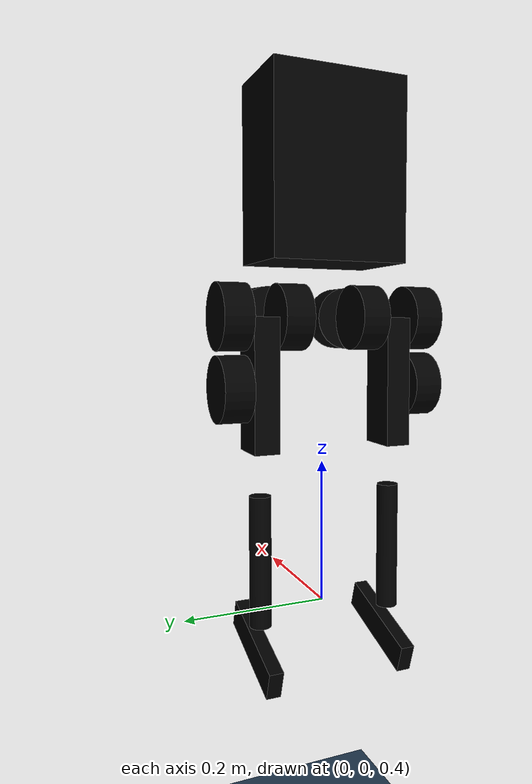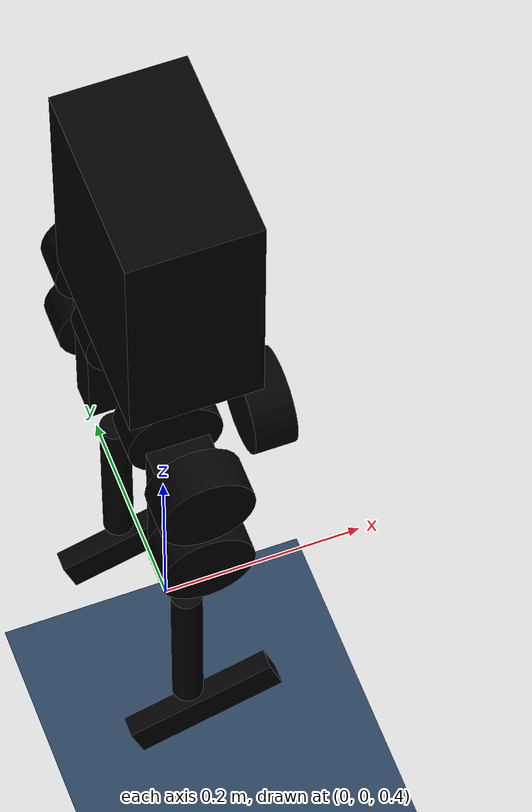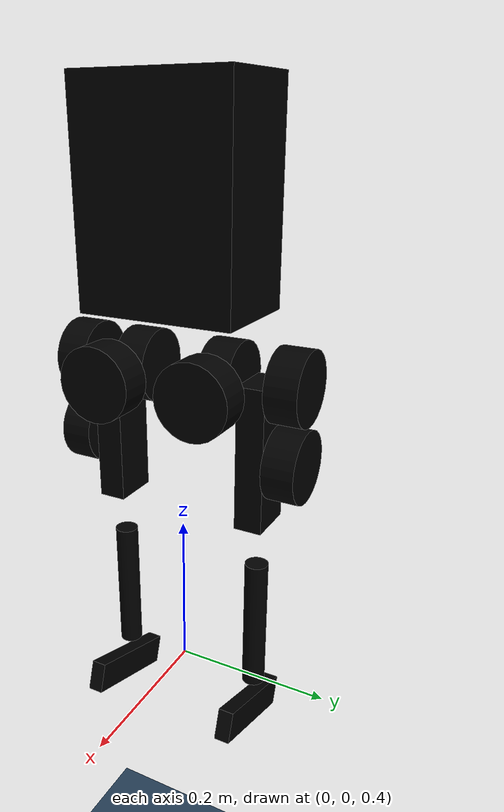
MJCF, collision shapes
<mujoco model="scene_floor">
  <include file="mvsc_reduced.xml"/>

  <statistic center="0 0 0.25" extent="1"/>

  <visual>
    <headlight diffuse="0.6 0.6 0.6" ambient="0.3 0.3 0.3" specular="0 0 0"/>
    <rgba haze="0.15 0.25 0.35 1"/>
    <global azimuth="-130" elevation="-20"/>
  </visual>

  <asset>
    <texture type="skybox" builtin="gradient" rgb1="0.3 0.5 0.7" rgb2="0 0 0" width="512" height="3072"/>
    <texture type="2d" name="groundplane" builtin="checker" mark="edge" rgb1="0.2 0.3 0.4" rgb2="0.1 0.2 0.3"
      markrgb="0.8 0.8 0.8" width="300" height="300"/>
    <material name="groundplane" texture="groundplane" texuniform="true" texrepeat="5 5" reflectance="0.2"/>
  </asset>

  <worldbody>
    <light name="spotlight0" mode="targetbodycom" target="trunk" pos="0 0 10" cutoff="60" />
		<light name="spotlight1" mode="targetbodycom" target="trunk" pos="0.5 0 10" cutoff="60" />
    <geom name="floor" size="0 0 .125" type="plane" material="groundplane" conaffinity="15" condim="3" />
  </worldbody>
</mujoco>

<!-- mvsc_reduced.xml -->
<mujoco model="hector_v1">
  <compiler angle="radian" meshdir="./meshes/"/>
  <option timestep='0.001' o_solref='-100000 -1000' >
		<flag override='enable' />
	</option>
  <default>
    <default class="a1_joint">
      <joint axis="0 1 0" armature="0.01" frictionloss="0.2" damping="0.1" actuatorfrcrange="-33.5 33.5"/>
    </default>
    <default class="a1_actuator">
      <general biastype="affine" gainprm="0.0 0 0 0 0 0 0 0 0 0" biasprm="0 0.0 0.0 0 0 0 0 0 0 0" forcerange="-33.5 33.5"/>
    </default>
    <default class="imu">
      <site type="box" size="0.01 0.008 0.0015" rgba="1 0 0 0" />
    </default>
  </default>
  <asset>
    <mesh name="base_visuals" file="base_visuals.obj"/>
    <mesh name="l_calf_visuals" file="l_calf_visuals.obj"/>
    <mesh name="l_hip_visuals" file="l_hip_visuals.obj"/>
    <mesh name="l_hip2_visuals" file="l_hip2_visuals.obj"/>
    <mesh name="l_thigh_visuals" file="l_thigh_visuals.obj"/>
    <mesh name="l_toe_visuals" file="l_toe_visuals.obj"/>
    <mesh name="r_calf_visuals" file="r_calf_visuals.obj"/>
    <mesh name="r_hip_visuals" file="r_hip_visuals.obj"/>
    <mesh name="r_hip2_visuals" file="r_hip2_visuals.obj"/>
    <mesh name="r_thigh_visuals" file="r_thigh_visuals.obj"/>
    <mesh name="r_toe_visuals" file="r_toe_visuals.obj"/>
    <material name="black" rgba="0.2 0.2 0.2 1" />
    <material name="silver" rgba="0.75 0.75 0.75 1" />
    <material name="transparent" rgba="0 0 0 0" />
  </asset>
  <visual>
		  <headlight diffuse="0.6 0.6 0.6" ambient="0.3 0.3 0.3" specular="0 0 0" />
		  <rgba haze="0.15 0.25 0.35 1" />
	    <global offheight="2160" offwidth="3840"/>
    	<quality offsamples="8"/>
	</visual>
  <worldbody>
    <body name="trunk" pos="0 0 1.0">
      <freejoint name="root" />
			<site name="torso_imu" class="imu"/>
      <geom type="mesh" contype="0" conaffinity="0" group="1" density="0" mesh="base_visuals" material="black"/>
      <geom size="0.0625 0.095 0.124" type="box" rgba="0 0 0 0"/>
			<inertial pos="0.0 0.0 0.0" mass="5.89" diaginertia="0.0479073  0.03785748 0.02538835" />
      <body name="l_hip" pos="0 0.047 -0.1265" childclass="a1_joint">
				<inertial pos="0.0651881 0.0105682 -0.05877" quat="-0.0733308 0.865238 0.13671 0.476756" mass="0.874" diaginertia="0.00147219 0.00132639 0.000517101" />
        <joint name="l_hip_yaw_joint" pos="0 0 0" axis="0 0 -1" limited="true" range="-0.785398 0.785398" damping="1.0"  armature="0.01" frictionloss="0.2" />
        <geom type="mesh" contype="0" conaffinity="0" group="1" density="0" mesh="l_hip_visuals"  material="black"/>
        <geom size="5e-05 5e-05 5e-05" pos="0.015 0 -0.002" type="box" material="transparent"/>
        <geom size="0.045 0.02" pos="0.0708113 0.015 -0.0705" quat="0.707107 0 0.707107 0" type="cylinder" material="transparent"/>
        <body name="l_hip2" pos="0.0465 0.015 -0.0705">
					<inertial pos="-0.0565847 -0.0143919 0" quat="0.490371 0.490371 0.509447 0.509447" mass="0.745" diaginertia="0.000770832 0.000552938 0.000493077" />
          <joint name="l_hip_roll_joint" pos="0 0 0" axis="-1 0 0" limited="true" range="-0.785398 0.785398" damping="1.0"  armature="0.01" frictionloss="0.2" />
          <geom type="mesh" contype="0" conaffinity="0" group="1" density="0" mesh="l_hip2_visuals" material="black"/>
          <geom size="5e-06 5e-06 5e-06" pos="-0.1 0 -6.92e-05" type="box" material="transparent"/>
          <geom size="0.045 0.02" pos="-0.06 -0.0063264 0" quat="0.707107 -0.707107 0 0" type="cylinder" material="transparent"/>
          <body name="l_thigh" pos="-0.06 0.018 0" quat="1 0 0 0">
						<inertial pos="-4.85963e-05 0.0199702 -0.0592828" quat="0.98238 -0.186894 0.000253273 0.000716486" mass="1.942" diaginertia="0.0111784 0.0106783 0.00282909" />
            <joint name="l_hip_pitch_joint" pos="0 0 0" axis="0 -1 0" limited="true" range="-3.14 3.14" damping="1.0"  armature="0.01" frictionloss="0.2" />
            <geom type="mesh" contype="0" conaffinity="0" group="1" density="0" mesh="l_thigh_visuals" material="silver"/>
            <geom size="0.03 0.0175 0.09" pos="0 0.0175 -0.09" type="box" material="transparent"/>
            <geom size="0.045 0.02" pos="0 0.05842 0" quat="0.707107 -0.707107 0 0" type="cylinder" material="transparent"/>
            <geom size="0.045 0.02" pos="0 0.05842 -0.095" quat="0.707107 -0.707107 0 0" type="cylinder" material="transparent"/>
            <body name="l_calf" pos="0 0.018 -0.22" quat="1 0 0 0">
							<inertial pos="0 0.020417 -0.1141" mass="0.303" diaginertia="0.001911 0.00191038 6.8352e-05" />
              <joint name="l_knee_joint" pos="0 0 0" axis="0 1 0" limited="true" range="-3.14 3.14" damping="1.0"  armature="0.01" frictionloss="0.2" />
              <geom pos="0 0.01743 0" type="mesh" contype="0" conaffinity="0" group="1" density="0" mesh="l_calf_visuals" material="silver"/>
              <geom size="0.015 0.09" pos="0 0 -0.11" type="cylinder" material="transparent"/>
              <body name="l_toe" pos="0 0 -0.22" quat="0.9876883 0 -0.1564345 0">
								<inertial pos="0.010569 0.017949 -0.017118" quat="0.5 0.5 0.5 0.5" mass="0.214" diaginertia="0.000290752 0.000249491 5.7298e-05" />
                <joint name="l_ankle_joint" pos="0 0 0" axis="0 1 0" limited="true" range="-3.14 3.14" damping="1.0"  armature="0.01" frictionloss="0.2" />
                <geom pos="3.14e-05 -0.011948 -0.0454603" type="mesh" contype="0" conaffinity="0" group="1" density="0" mesh="l_toe_visuals" material="silver"/>
                <geom size="0.075 0.01 0.02" pos="0.01 0 -0.02" type="box" material="transparent"/>
              </body>
            </body>
          </body>
        </body>
      </body>
      <body name="r_hip" pos="0 -0.047 -0.1265" childclass="a1_joint">
				<inertial pos="0.0651881 -0.011743 -0.05877" quat="0.054396 0.871604 -0.102394 0.476301" mass="0.874" diaginertia="0.00144737 0.00130361 0.000518878" />
        <joint name="r_hip_yaw_joint" pos="0 0 0" axis="0 0 1" limited="true" range="-0.785398 0.785398" damping="1.0"  armature="0.01" frictionloss="0.2" />
        <geom type="mesh" contype="0" conaffinity="0" group="1" density="0" mesh="r_hip_visuals" material="black"/>
        <geom size="5e-05 5e-05 5e-05" pos="0.015 0 -0.002" type="box" material="transparent"/>
        <geom size="0.045 0.02" pos="0.07081 -0.015 -0.0705" quat="0.707107 0 0.707107 0" type="cylinder" material="transparent"/>
        <body name="r_hip2" pos="0.0465 -0.015 -0.0705">
					<inertial pos="-0.0565847 0.0117826 0" quat="0.554078 0.554078 0.439315 0.439315" mass="0.745" diaginertia="0.000783544 0.000603818 0.000531245" />
          <joint name="r_hip_roll_joint" pos="0 0 0" axis="1 0 0" limited="true" range="-0.785398 0.785398" damping="1.0"  armature="0.01" frictionloss="0.2" />
          <geom type="mesh" contype="0" conaffinity="0" group="1" density="0" mesh="r_hip2_visuals" material="black"/>
          <geom size="5e-06 5e-06 5e-06" pos="-0.1 0 0" type="box" material="transparent"/>
          <geom size="0.045 0.02" pos="-0.06 0.00633 0" quat="0.707107 -0.707107 0 0" type="cylinder" material="transparent"/>
          <body name="r_thigh" pos="-0.06 -0.018 0" quat="1 0 0 0">
						<inertial pos="-4.85963e-05 -0.0199702 -0.0592828" quat="0.98238 0.186894 0.000253273 -0.000716486" mass="1.942" diaginertia="0.0111784 0.0106783 0.00282909" />
            <joint name="r_hip_pitch_joint" pos="0 0 0" axis="0 1 0" limited="true" range="-3.14 3.14" damping="1.0"  armature="0.01" frictionloss="0.2" />
            <geom type="mesh" contype="0" conaffinity="0" group="1" density="0" mesh="r_thigh_visuals" material="silver"/>
            <geom size="0.03 0.0175 0.09" pos="0 -0.0175 -0.09" type="box" material="transparent"/>
            <geom size="0.045 0.02" pos="0 -0.0584229 0" quat="0.707107 -0.707107 0 0" type="cylinder" material="transparent"/>
            <geom size="0.045 0.02" pos="0 -0.05842 -0.095" quat="0.707107 -0.707107 0 0" type="cylinder" material="transparent"/>
            <body name="r_calf" pos="0 -0.018 -0.22" quat="1 0 0 0">
							<inertial pos="0 -0.020417 -0.1141" mass="0.303" diaginertia="0.001911 0.00191038 6.8352e-05" />
              <joint name="r_knee_joint" pos="0 0 0" axis="0 1 0" limited="true" range="-3.14 3.14" damping="1.0"  armature="0.01" frictionloss="0.2" />
              <geom pos="0 0.01743 0" type="mesh" contype="0" conaffinity="0" group="1" density="0" mesh="r_calf_visuals" material="silver"/>
              <geom size="0.015 0.09" pos="0 0 -0.11" type="cylinder" material="transparent"/>
              <body name="r_toe" pos="0 0 -0.22" quat="0.9876883 0 -0.1564345 0">
								<inertial pos="0.010569 -0.017949 -0.017118" quat="0.5 0.5 0.5 0.5" mass="0.214" diaginertia="0.000290752 0.000249491 5.7298e-05" />
                <joint name="r_ankle_joint" pos="0 0 0" axis="0 1 0" limited="true" range="-3.14 3.14" damping="1.0"  armature="0.01" frictionloss="0.2" />
                <geom pos="3e-05 -0.01195 -0.04546" type="mesh" contype="0" conaffinity="0" group="1" density="0" mesh="r_toe_visuals" material="silver"/>
                <geom size="0.075 0.01 0.02" pos="0.01 0 -0.02" type="box" material="transparent"/>
              </body>
            </body>
          </body>
        </body>
      </body>
    </body>
  </worldbody>

  <sensor>
    <!-- root sensors -->
    <framepos name="root_pos" objtype="body" objname="trunk"/>
    <framequat name="root_quat" objtype="body" objname="trunk"/>
    <framelinvel name="root_linvel" objtype="body" objname="trunk"/>
    <frameangvel name="root_angvel" objtype="body" objname="trunk"/>

    <!-- imu sensors -->
    <framequat name="torso_imu_quat" objtype="site" objname="torso_imu"/>
    <accelerometer name="torso_imu_acc" site="torso_imu"/>
    <gyro name="torso_imu_gyro" site="torso_imu"/>

		<!-- motor encoders -->
		<actuatorpos name="l_hip_yaw_pos" actuator="l_hip_yaw"/>
		<actuatorpos name="l_hip_roll_pos" actuator="l_hip_roll"/>
		<actuatorpos name="l_hip_pitch_pos" actuator="l_hip_pitch"/>
		<actuatorpos name="l_knee_pos" actuator="l_knee"/>
		<actuatorpos name="l_ankle_pos" actuator="l_ankle"/>

		<actuatorpos name="r_hip_yaw_pos" actuator="r_hip_yaw"/>
		<actuatorpos name="r_hip_roll_pos" actuator="r_hip_roll"/>
		<actuatorpos name="r_hip_pitch_pos" actuator="r_hip_pitch"/>
		<actuatorpos name="r_knee_pos" actuator="r_knee"/>
		<actuatorpos name="r_ankle_pos" actuator="r_ankle"/>

		<actuatorvel name="l_hip_yaw_vel" actuator="l_hip_yaw"/>
		<actuatorvel name="l_hip_roll_vel" actuator="l_hip_roll"/>
		<actuatorvel name="l_hip_pitch_vel" actuator="l_hip_pitch"/>
		<actuatorvel name="l_knee_vel" actuator="l_knee"/>
		<actuatorvel name="l_ankle_vel" actuator="l_ankle"/>

		<actuatorvel name="r_hip_yaw_vel" actuator="r_hip_yaw"/>
		<actuatorvel name="r_hip_roll_vel" actuator="r_hip_roll"/>
		<actuatorvel name="r_hip_pitch_vel" actuator="r_hip_pitch"/>
		<actuatorvel name="r_knee_vel" actuator="r_knee"/>
		<actuatorvel name="r_ankle_vel" actuator="r_ankle"/>

		<actuatorfrc name="l_hip_yaw_frc" actuator="l_hip_yaw"/>
		<actuatorfrc name="l_hip_roll_frc" actuator="l_hip_roll"/>
		<actuatorfrc name="l_hip_pitch_frc" actuator="l_hip_pitch"/>
		<actuatorfrc name="l_knee_frc" actuator="l_knee"/>
		<actuatorfrc name="l_ankle_frc" actuator="l_ankle"/>

		<actuatorfrc name="r_hip_yaw_frc" actuator="r_hip_yaw"/>
		<actuatorfrc name="r_hip_roll_frc" actuator="r_hip_roll"/>
		<actuatorfrc name="r_hip_pitch_frc" actuator="r_hip_pitch"/>
		<actuatorfrc name="r_knee_frc" actuator="r_knee"/>
		<actuatorfrc name="r_ankle_frc" actuator="r_ankle"/>
	</sensor>

  <actuator>
		<general class="a1_actuator" name="l_hip_yaw" joint="l_hip_yaw_joint"  />
		<general class="a1_actuator" name="l_hip_roll" joint="l_hip_roll_joint"  />
		<general class="a1_actuator" name="l_hip_pitch" joint="l_hip_pitch_joint" />
		<general class="a1_actuator" name="l_knee" joint="l_knee_joint" forcerange="-67.0 67.0"   />
		<general class="a1_actuator" name="l_ankle" joint="l_ankle_joint"  />

		<general class="a1_actuator" name="r_hip_yaw" joint="r_hip_yaw_joint"  />
		<general class="a1_actuator" name="r_hip_roll" joint="r_hip_roll_joint" />
		<general class="a1_actuator" name="r_hip_pitch" joint="r_hip_pitch_joint"  />
		<general class="a1_actuator" name="r_knee" joint="r_knee_joint" forcerange="-67.0 67.0"   />
		<general class="a1_actuator" name="r_ankle" joint="r_ankle_joint" />
	</actuator>

	<equality>
		<weld name="world_root" active="true" body1="trunk" relpose="0 0 -0.7 1 0 0 0"/>
	</equality>

  <keyframe>
    <key name="home" qpos="
                              0.00 0.00 0.55
                              1.00 0.00 0.000   0.00
                              0.00 0.00 0.00  0.0 0.0
                              0.00 0.00 0.00  0.0 0.0
                          "
      />
  </keyframe>

</mujoco>
